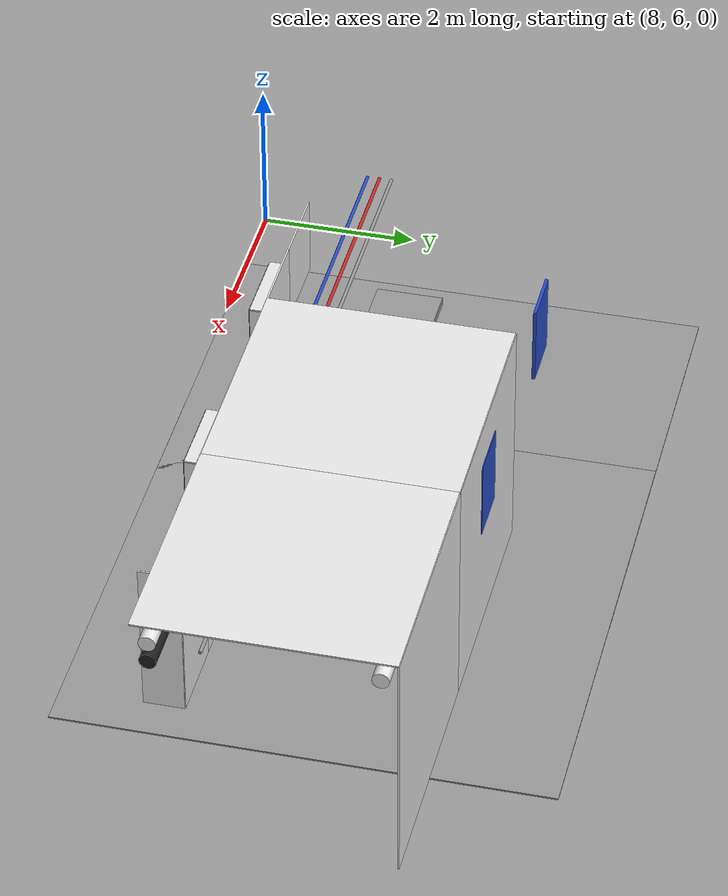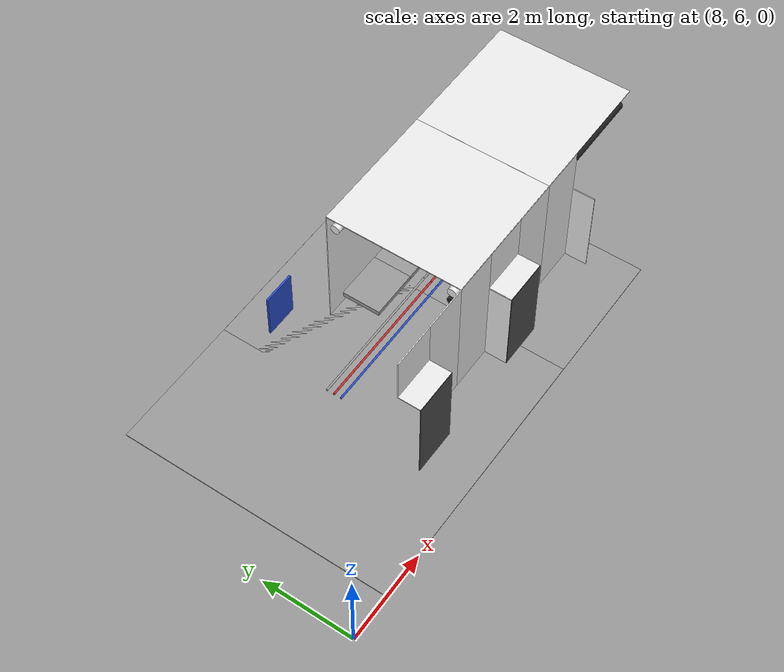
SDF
<sdf version="1.6">
 <world name="default">
  <model name="ceiling_1_4_3_2_1">
   <pose>13.0 9.0 2.55 0.0 0.0 -1.57</pose>
   <link name="link_1">
    <visual name="visual">
     <geometry><box><size>0.8 1 0.1</size></box></geometry>
     <material>
      <script><uri>file://media/materials/scripts/gazebo.material</uri><name>Gazebo/Grey</name></script>
     </material>
    </visual>
    <collision name="collision"><geometry><box><size>0.8 1 0.1</size></box></geometry></collision>
   </link>
   <static>1</static>
  </model>
  <model name="grey_pipe_right_4_3_0_1">
   <static>1</static>
   <pose>12.0 9.0 2.76 0.0 0.0 -1.57</pose>
   <link name="link_0">
    <visual name="visual">
     <pose>0.7 0 0 1.57 0 0</pose>
     <geometry><cylinder><radius>0.02</radius><length>3.0</length></cylinder></geometry>
     <material>
      <script><uri>file://media/materials/scripts/gazebo.material</uri><name>Gazebo/Grey</name></script>
     </material>
    </visual>
    <collision name="collision">
     <pose>0.7 0 0 1.57 0 0</pose>
     <geometry><cylinder><radius>0.02</radius><length>3.0</length></cylinder></geometry>
    </collision>
   </link>
  </model>
  <model name="red_pipe_right_4_3_0_1">
   <static>1</static>
   <pose>12.0 9.0 2.76 0.0 0.0 -1.57</pose>
   <link name="link_0">
    <visual name="visual">
     <pose>0.85 0 0 1.57 0 0</pose>
     <geometry><cylinder><radius>0.02</radius><length>3.0</length></cylinder></geometry>
     <material>
      <script><uri>file://media/materials/scripts/gazebo.material</uri><name>Gazebo/Red</name></script>
     </material>
    </visual>
    <collision name="collision">
     <pose>0.85 0 0 1.57 0 0</pose>
     <geometry><cylinder><radius>0.02</radius><length>3.0</length></cylinder></geometry>
    </collision>
   </link>
  </model>
  <model name="blue_pipe_right_4_3_0_1">
   <static>1</static>
   <pose>12.0 9.0 2.76 0.0 0.0 -1.57</pose>
   <link name="link_0">
    <visual name="visual">
     <pose>1 0 0 1.57 0 0</pose>
     <geometry><cylinder><radius>0.02</radius><length>3.0</length></cylinder></geometry>
     <material>
      <script><uri>file://media/materials/scripts/gazebo.material</uri><name>Gazebo/Blue</name></script>
     </material>
    </visual>
    <collision name="collision">
     <pose>1 0 0 1.57 0 0</pose>
     <geometry><cylinder><radius>0.02</radius><length>3.0</length></cylinder></geometry>
    </collision>
   </link>
  </model>
  <model name="panel_4_3_0_1">
   <static>1</static>
   <pose>12.0 10.5 1.95 0.0 0.0 -1.57</pose>
   <link name="link">
    <collision name="collision"><geometry><box><size>0.04 0.7 1</size></box></geometry></collision>
    <visual name="visual">
     <material>
      <script><name>Gazebo/Blue</name><uri>file://media/materials/scripts/gazebo.material</uri></script>
     </material>
     <geometry><box><size>0.04 0.7 1</size></box></geometry>
    </visual>
   </link>
  </model>
  <model name="wall_right_front_left_4_3_0_1">
   <static>1</static>
   <pose>13.0 7.5 1.5 0.0 0.0 0.0</pose>
   <link name="link">
    <collision name="collision"><geometry><box><size>1.0 0.02 3.0</size></box></geometry></collision>
    <visual name="visual">
     <material>
      <script><name>Gazebo/White</name><uri>file://media/materials/scripts/gazebo.material</uri></script>
     </material>
     <geometry><box><size>1.0 0.02 3.0</size></box></geometry>
    </visual>
   </link>
  </model>
  <model name="wall_right_front_up_4_3_0_1">
   <static>1</static>
   <pose>12.0 7.5 2.5 0.0 0.0 0.0</pose>
   <link name="link">
    <collision name="collision"><geometry><box><size>1.0 0.02 1.0</size></box></geometry></collision>
    <visual name="visual">
     <material>
      <script><name>Gazebo/White</name><uri>file://media/materials/scripts/gazebo.material</uri></script>
     </material>
     <geometry><box><size>1.0 0.02 1.0</size></box></geometry>
    </visual>
   </link>
  </model>
  <model name="wall_right_inside_back_4_3_0_1">
   <static>1</static>
   <pose>12.0 7.0 1.0 0.0 0.0 0.0</pose>
   <link name="link">
    <collision name="collision"><geometry><box><size>1 0.02 2</size></box></geometry></collision>
    <visual name="visual">
     <material>
      <script><name>Gazebo/DarkGrey</name><uri>file://media/materials/scripts/gazebo.material</uri></script>
     </material>
     <geometry><box><size>1 0.02 2</size></box></geometry>
    </visual>
   </link>
  </model>
  <model name="wall_right_inside_left_4_3_0_1">
   <static>1</static>
   <pose>12.5 7.25 1.0 0.0 0.0 -1.57</pose>
   <link name="link">
    <collision name="collision"><geometry><box><size>0.5 0.02 2</size></box></geometry></collision>
    <visual name="visual">
     <material>
      <script><name>Gazebo/White</name><uri>file://media/materials/scripts/gazebo.material</uri></script>
     </material>
     <geometry><box><size>0.5 0.02 2</size></box></geometry>
    </visual>
   </link>
  </model>
  <model name="wall_right_inside_top_4_3_0_1">
   <static>1</static>
   <pose>12.0 7.25 2.0 1.57 0.0 0.0</pose>
   <link name="link">
    <collision name="collision"><geometry><box><size>1 0.02 0.5</size></box></geometry></collision>
    <visual name="visual">
     <material>
      <script><name>Gazebo/White</name><uri>file://media/materials/scripts/gazebo.material</uri></script>
     </material>
     <geometry><box><size>1 0.02 0.5</size></box></geometry>
    </visual>
   </link>
  </model>
  <model name="wall_bottom_4_3_0_1">
   <static>1</static>
   <pose>12.0 9.0 0.0 0.0 0.0 -1.57</pose>
   <link name="link">
    <collision name="collision"><geometry><box><size>6.0 6.0 0.02</size></box></geometry></collision>
    <visual name="visual">
     <material>
      <script><name>Gazebo/Grey</name><uri>file://media/materials/scripts/gazebo.material</uri></script>
     </material>
     <geometry><box><size>6.0 6.0 0.02</size></box></geometry>
    </visual>
   </link>
  </model>
  <model name="wall_left_5_3_0_1">
   <static>1</static>
   <pose>15.0 10.5 1.5 0.0 0.0 0.0</pose>
   <link name="link">
    <collision name="collision"><geometry><box><size>3.0 0.02 3.0</size></box></geometry></collision>
    <visual name="visual">
     <material>
      <script><name>Gazebo/White</name><uri>file://media/materials/scripts/gazebo.material</uri></script>
     </material>
     <geometry><box><size>3.0 0.02 3.0</size></box></geometry>
    </visual>
   </link>
  </model>
  <model name="wall_top_5_3_0_1">
   <static>1</static>
   <pose>15.0 9.0 3.0 1.57 0.0 -1.57</pose>
   <link name="link">
    <collision name="collision"><geometry><box><size>3.0 0.02 3.0</size></box></geometry></collision>
    <visual name="visual">
     <material>
      <script><name>Gazebo/White</name><uri>file://media/materials/scripts/gazebo.material</uri></script>
     </material>
     <geometry><box><size>3.0 0.02 3.0</size></box></geometry>
    </visual>
   </link>
  </model>
  <model name="ceiling_1_5_3_0_1">
   <pose>15.0 9.0 2.55 0.0 0.0 -1.57</pose>
   <link name="link_1">
    <visual name="visual">
     <geometry><box><size>0.8 1 0.1</size></box></geometry>
     <material>
      <script><uri>file://media/materials/scripts/gazebo.material</uri><name>Gazebo/Grey</name></script>
     </material>
    </visual>
    <collision name="collision"><geometry><box><size>0.8 1 0.1</size></box></geometry></collision>
   </link>
   <static>1</static>
  </model>
  <model name="ceiling_1_5_3_1_1">
   <pose>14.0 9.0 2.55 0.0 0.0 -1.57</pose>
   <link name="link_1">
    <visual name="visual">
     <geometry><box><size>0.8 1 0.1</size></box></geometry>
     <material>
      <script><uri>file://media/materials/scripts/gazebo.material</uri><name>Gazebo/Grey</name></script>
     </material>
    </visual>
    <collision name="collision"><geometry><box><size>0.8 1 0.1</size></box></geometry></collision>
   </link>
   <static>1</static>
  </model>
  <model name="ceiling_1_5_3_2_1">
   <pose>16.0 9.0 2.55 0.0 0.0 -1.57</pose>
   <link name="link_1">
    <visual name="visual">
     <geometry><box><size>0.8 1 0.1</size></box></geometry>
     <material>
      <script><uri>file://media/materials/scripts/gazebo.material</uri><name>Gazebo/Grey</name></script>
     </material>
    </visual>
    <collision name="collision"><geometry><box><size>0.8 1 0.1</size></box></geometry></collision>
   </link>
   <static>1</static>
  </model>
  <model name="white_pipe_left_5_3_0_1">
   <static>1</static>
   <pose>15.0 9.0 2.76 0.0 0.0 -1.57</pose>
   <link name="link_0">
    <visual name="visual">
     <pose>-1.3 0 0 1.57 0 0</pose>
     <geometry><cylinder><radius>0.1</radius><length>3.0</length></cylinder></geometry>
     <material>
      <script><uri>file://media/materials/scripts/gazebo.material</uri><name>Gazebo/White</name></script>
     </material>
    </visual>
    <collision name="collision">
     <pose>-1.3 0 0 1.57 0 0</pose>
     <geometry><cylinder><radius>0.1</radius><length>3.0</length></cylinder></geometry>
    </collision>
   </link>
  </model>
  <model name="white_pipe_right_5_3_0_1">
   <static>1</static>
   <pose>15.0 9.0 2.76 0.0 0.0 -1.57</pose>
   <link name="link_0">
    <visual name="visual">
     <pose>1.3 0 0 1.57 0 0</pose>
     <geometry><cylinder><radius>0.1</radius><length>3.0</length></cylinder></geometry>
     <material>
      <script><uri>file://media/materials/scripts/gazebo.material</uri><name>Gazebo/White</name></script>
     </material>
    </visual>
    <collision name="collision">
     <pose>1.3 0 0 1.57 0 0</pose>
     <geometry><cylinder><radius>0.1</radius><length>3.0</length></cylinder></geometry>
    </collision>
   </link>
  </model>
  <model name="black_pipe_right_5_3_0_1">
   <static>1</static>
   <pose>15.0 9.0 2.76 0.0 0.0 -1.57</pose>
   <link name="link_0">
    <visual name="visual">
     <pose>1.3 0 -0.25 1.57 0 0</pose>
     <geometry><cylinder><radius>0.1</radius><length>3.0</length></cylinder></geometry>
     <material>
      <script><uri>file://media/materials/scripts/gazebo.material</uri><name>Gazebo/Black</name></script>
     </material>
    </visual>
    <collision name="collision">
     <pose>1.3 0 -0.25 1.57 0 0</pose>
     <geometry><cylinder><radius>0.1</radius><length>3.0</length></cylinder></geometry>
    </collision>
   </link>
  </model>
  <model name="grey_pipe_right_5_3_0_1">
   <static>1</static>
   <pose>15.0 9.0 2.76 0.0 0.0 -1.57</pose>
   <link name="link_0">
    <visual name="visual">
     <pose>0.7 0 0 1.57 0 0</pose>
     <geometry><cylinder><radius>0.02</radius><length>3.0</length></cylinder></geometry>
     <material>
      <script><uri>file://media/materials/scripts/gazebo.material</uri><name>Gazebo/Grey</name></script>
     </material>
    </visual>
    <collision name="collision">
     <pose>0.7 0 0 1.57 0 0</pose>
     <geometry><cylinder><radius>0.02</radius><length>3.0</length></cylinder></geometry>
    </collision>
   </link>
  </model>
  <model name="red_pipe_right_5_3_0_1">
   <static>1</static>
   <pose>15.0 9.0 2.76 0.0 0.0 -1.57</pose>
   <link name="link_0">
    <visual name="visual">
     <pose>0.85 0 0 1.57 0 0</pose>
     <geometry><cylinder><radius>0.02</radius><length>3.0</length></cylinder></geometry>
     <material>
      <script><uri>file://media/materials/scripts/gazebo.material</uri><name>Gazebo/Red</name></script>
     </material>
    </visual>
    <collision name="collision">
     <pose>0.85 0 0 1.57 0 0</pose>
     <geometry><cylinder><radius>0.02</radius><length>3.0</length></cylinder></geometry>
    </collision>
   </link>
  </model>
  <model name="blue_pipe_right_5_3_0_1">
   <static>1</static>
   <pose>15.0 9.0 2.76 0.0 0.0 -1.57</pose>
   <link name="link_0">
    <visual name="visual">
     <pose>1 0 0 1.57 0 0</pose>
     <geometry><cylinder><radius>0.02</radius><length>3.0</length></cylinder></geometry>
     <material>
      <script><uri>file://media/materials/scripts/gazebo.material</uri><name>Gazebo/Blue</name></script>
     </material>
    </visual>
    <collision name="collision">
     <pose>1 0 0 1.57 0 0</pose>
     <geometry><cylinder><radius>0.02</radius><length>3.0</length></cylinder></geometry>
    </collision>
   </link>
  </model>
  <model name="panel_5_3_0_1">
   <static>1</static>
   <pose>15.0 10.5 1.95 0.0 0.0 -1.57</pose>
   <link name="link">
    <collision name="collision"><geometry><box><size>0.04 0.7 1</size></box></geometry></collision>
    <visual name="visual">
     <material>
      <script><name>Gazebo/Blue</name><uri>file://media/materials/scripts/gazebo.material</uri></script>
     </material>
     <geometry><box><size>0.04 0.7 1</size></box></geometry>
    </visual>
   </link>
  </model>
  <model name="wall_right_front_left_5_3_0_1">
   <static>1</static>
   <pose>16.0 7.5 1.5 0.0 0.0 0.0</pose>
   <link name="link">
    <collision name="collision"><geometry><box><size>1.0 0.02 3.0</size></box></geometry></collision>
    <visual name="visual">
     <material>
      <script><name>Gazebo/White</name><uri>file://media/materials/scripts/gazebo.material</uri></script>
     </material>
     <geometry><box><size>1.0 0.02 3.0</size></box></geometry>
    </visual>
   </link>
  </model>
  <model name="wall_right_front_right_5_3_0_1">
   <static>1</static>
   <pose>14.0 7.5 1.5 0.0 0.0 0.0</pose>
   <link name="link">
    <collision name="collision"><geometry><box><size>1.0 0.02 3.0</size></box></geometry></collision>
    <visual name="visual">
     <material>
      <script><name>Gazebo/White</name><uri>file://media/materials/scripts/gazebo.material</uri></script>
     </material>
     <geometry><box><size>1.0 0.02 3.0</size></box></geometry>
    </visual>
   </link>
  </model>
  <model name="wall_right_front_up_5_3_0_1">
   <static>1</static>
   <pose>15.0 7.5 2.5 0.0 0.0 0.0</pose>
   <link name="link">
    <collision name="collision"><geometry><box><size>1.0 0.02 1.0</size></box></geometry></collision>
    <visual name="visual">
     <material>
      <script><name>Gazebo/White</name><uri>file://media/materials/scripts/gazebo.material</uri></script>
     </material>
     <geometry><box><size>1.0 0.02 1.0</size></box></geometry>
    </visual>
   </link>
  </model>
  <model name="wall_right_inside_back_5_3_0_1">
   <static>1</static>
   <pose>15.0 7.0 1.0 0.0 0.0 0.0</pose>
   <link name="link">
    <collision name="collision"><geometry><box><size>1 0.02 2</size></box></geometry></collision>
    <visual name="visual">
     <material>
      <script><name>Gazebo/DarkGrey</name><uri>file://media/materials/scripts/gazebo.material</uri></script>
     </material>
     <geometry><box><size>1 0.02 2</size></box></geometry>
    </visual>
   </link>
  </model>
  <model name="wall_right_inside_left_5_3_0_1">
   <static>1</static>
   <pose>15.5 7.25 1.0 0.0 0.0 -1.57</pose>
   <link name="link">
    <collision name="collision"><geometry><box><size>0.5 0.02 2</size></box></geometry></collision>
    <visual name="visual">
     <material>
      <script><name>Gazebo/White</name><uri>file://media/materials/scripts/gazebo.material</uri></script>
     </material>
     <geometry><box><size>0.5 0.02 2</size></box></geometry>
    </visual>
   </link>
  </model>
  <model name="wall_right_inside_right_5_3_0_1">
   <static>1</static>
   <pose>14.5 7.25 1.0 0.0 0.0 -1.57</pose>
   <link name="link">
    <collision name="collision"><geometry><box><size>0.5 0.02 2</size></box></geometry></collision>
    <visual name="visual">
     <material>
      <script><name>Gazebo/White</name><uri>file://media/materials/scripts/gazebo.material</uri></script>
     </material>
     <geometry><box><size>0.5 0.02 2</size></box></geometry>
    </visual>
   </link>
  </model>
  <model name="wall_right_inside_top_5_3_0_1">
   <static>1</static>
   <pose>15.0 7.25 2.0 1.57 0.0 0.0</pose>
   <link name="link">
    <collision name="collision"><geometry><box><size>1 0.02 0.5</size></box></geometry></collision>
    <visual name="visual">
     <material>
      <script><name>Gazebo/White</name><uri>file://media/materials/scripts/gazebo.material</uri></script>
     </material>
     <geometry><box><size>1 0.02 0.5</size></box></geometry>
    </visual>
   </link>
  </model>
  <model name="wall_bottom_5_3_0_1">
   <static>1</static>
   <pose>15.0 9.0 0.0 0.0 0.0 -1.57</pose>
   <link name="link">
    <collision name="collision"><geometry><box><size>6.0 6.0 0.02</size></box></geometry></collision>
    <visual name="visual">
     <material>
      <script><name>Gazebo/Grey</name><uri>file://media/materials/scripts/gazebo.material</uri></script>
     </material>
     <geometry><box><size>6.0 6.0 0.02</size></box></geometry>
    </visual>
   </link>
  </model>
  <model name="wall_left_6_3_0_1">
   <static>1</static>
   <pose>18.0 10.5 1.5 0.0 0.0 0.0</pose>
   <link name="link">
    <collision name="collision"><geometry><box><size>3.0 0.02 3.0</size></box></geometry></collision>
    <visual name="visual">
     <material>
      <script><name>Gazebo/White</name><uri>file://media/materials/scripts/gazebo.material</uri></script>
     </material>
     <geometry><box><size>3.0 0.02 3.0</size></box></geometry>
    </visual>
   </link>
  </model>
  <model name="wall_top_6_3_0_1">
   <static>1</static>
   <pose>18.0 9.0 3.0 1.57 0.0 -1.57</pose>
   <link name="link">
    <collision name="collision"><geometry><box><size>3.0 0.02 3.0</size></box></geometry></collision>
    <visual name="visual">
     <material>
      <script><name>Gazebo/White</name><uri>file://media/materials/scripts/gazebo.material</uri></script>
     </material>
     <geometry><box><size>3.0 0.02 3.0</size></box></geometry>
    </visual>
   </link>
  </model>
  <model name="ceiling_1_6_3_0_1">
   <pose>18.0 9.0 2.55 0.0 0.0 -1.57</pose>
   <link name="link_1">
    <visual name="visual">
     <geometry><box><size>0.8 1 0.1</size></box></geometry>
     <material>
      <script><uri>file://media/materials/scripts/gazebo.material</uri><name>Gazebo/Grey</name></script>
     </material>
    </visual>
    <collision name="collision"><geometry><box><size>0.8 1 0.1</size></box></geometry></collision>
   </link>
   <static>1</static>
  </model>
  <model name="ceiling_1_6_3_1_1">
   <pose>17.0 9.0 2.55 0.0 0.0 -1.57</pose>
   <link name="link_1">
    <visual name="visual">
     <geometry><box><size>0.8 1 0.1</size></box></geometry>
     <material>
      <script><uri>file://media/materials/scripts/gazebo.material</uri><name>Gazebo/Grey</name></script>
     </material>
    </visual>
    <collision name="collision"><geometry><box><size>0.8 1 0.1</size></box></geometry></collision>
   </link>
   <static>1</static>
  </model>
  <model name="white_pipe_left_6_3_0_1">
   <static>1</static>
   <pose>18.0 9.0 2.76 0.0 0.0 -1.57</pose>
   <link name="link_0">
    <visual name="visual">
     <pose>-1.3 0 0 1.57 0 0</pose>
     <geometry><cylinder><radius>0.1</radius><length>3.0</length></cylinder></geometry>
     <material>
      <script><uri>file://media/materials/scripts/gazebo.material</uri><name>Gazebo/White</name></script>
     </material>
    </visual>
    <collision name="collision">
     <pose>-1.3 0 0 1.57 0 0</pose>
     <geometry><cylinder><radius>0.1</radius><length>3.0</length></cylinder></geometry>
    </collision>
   </link>
  </model>
  <model name="white_pipe_right_6_3_0_1">
   <static>1</static>
   <pose>18.0 9.0 2.76 0.0 0.0 -1.57</pose>
   <link name="link_0">
    <visual name="visual">
     <pose>1.3 0 0 1.57 0 0</pose>
     <geometry><cylinder><radius>0.1</radius><length>3.0</length></cylinder></geometry>
     <material>
      <script><uri>file://media/materials/scripts/gazebo.material</uri><name>Gazebo/White</name></script>
     </material>
    </visual>
    <collision name="collision">
     <pose>1.3 0 0 1.57 0 0</pose>
     <geometry><cylinder><radius>0.1</radius><length>3.0</length></cylinder></geometry>
    </collision>
   </link>
  </model>
  <model name="black_pipe_right_6_3_0_1">
   <static>1</static>
   <pose>18.0 9.0 2.76 0.0 0.0 -1.57</pose>
   <link name="link_0">
    <visual name="visual">
     <pose>1.3 0 -0.25 1.57 0 0</pose>
     <geometry><cylinder><radius>0.1</radius><length>3.0</length></cylinder></geometry>
     <material>
      <script><uri>file://media/materials/scripts/gazebo.material</uri><name>Gazebo/Black</name></script>
     </material>
    </visual>
    <collision name="collision">
     <pose>1.3 0 -0.25 1.57 0 0</pose>
     <geometry><cylinder><radius>0.1</radius><length>3.0</length></cylinder></geometry>
    </collision>
   </link>
  </model>
  <model name="grey_pipe_right_6_3_0_1">
   <static>1</static>
   <pose>18.0 9.0 2.76 0.0 0.0 -1.57</pose>
   <link name="link_0">
    <visual name="visual">
     <pose>0.7 0 0 1.57 0 0</pose>
     <geometry><cylinder><radius>0.02</radius><length>3.0</length></cylinder></geometry>
     <material>
      <script><uri>file://media/materials/scripts/gazebo.material</uri><name>Gazebo/Grey</name></script>
     </material>
    </visual>
    <collision name="collision">
     <pose>0.7 0 0 1.57 0 0</pose>
     <geometry><cylinder><radius>0.02</radius><length>3.0</length></cylinder></geometry>
    </collision>
   </link>
  </model>
  <model name="wall_right_front_right_6_3_0_1">
   <static>1</static>
   <pose>17.0 7.5 1.5 0.0 0.0 0.0</pose>
   <link name="link">
    <collision name="collision"><geometry><box><size>1.0 0.02 3.0</size></box></geometry></collision>
    <visual name="visual">
     <material>
      <script><name>Gazebo/White</name><uri>file://media/materials/scripts/gazebo.material</uri></script>
     </material>
     <geometry><box><size>1.0 0.02 3.0</size></box></geometry>
    </visual>
   </link>
  </model>
  <model name="wall_right_inside_right_6_3_0_1">
   <static>1</static>
   <pose>17.5 7.25 1.0 0.0 0.0 -1.57</pose>
   <link name="link">
    <collision name="collision"><geometry><box><size>0.5 0.02 2</size></box></geometry></collision>
    <visual name="visual">
     <material>
      <script><name>Gazebo/White</name><uri>file://media/materials/scripts/gazebo.material</uri></script>
     </material>
     <geometry><box><size>0.5 0.02 2</size></box></geometry>
    </visual>
   </link>
  </model>
 </world>
</sdf>
